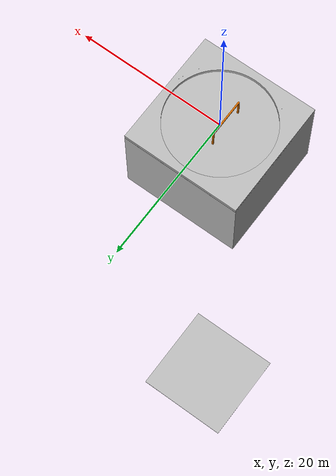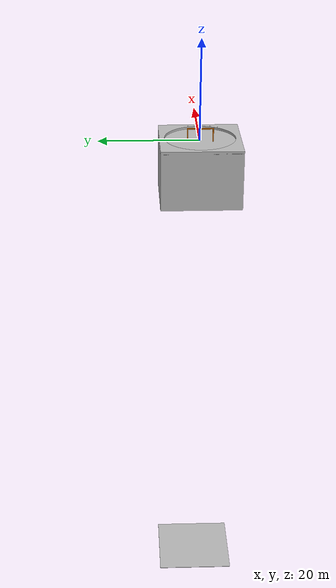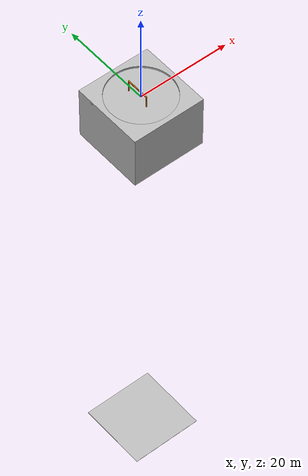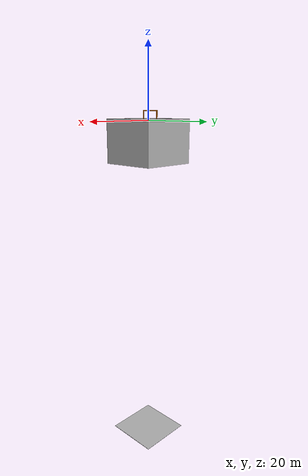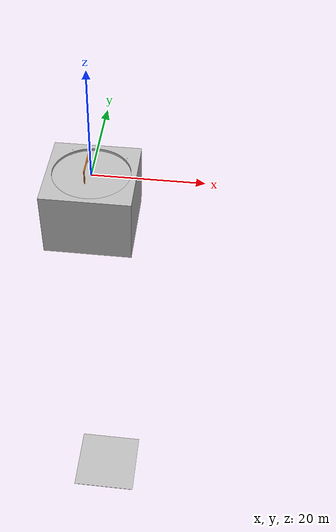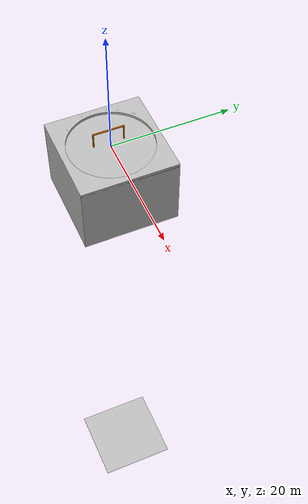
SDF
<sdf version="1.6">
 <world name="empty_underwater">
  <physics name="default_physics" default="1" type="ode">
   <max_step_size>0.002</max_step_size>
   <real_time_factor>1</real_time_factor>
   <real_time_update_rate>500</real_time_update_rate>
   <ode>
    <solver>
     <type>quick</type>
     <iters>50</iters>
     <sor>0.5</sor>
     <use_dynamic_moi_rescaling>0</use_dynamic_moi_rescaling>
    </solver>
    <constraints>
     <cfm>0</cfm>
     <erp>0.2</erp>
     <contact_max_correcting_vel>100</contact_max_correcting_vel>
     <contact_surface_layer>0.001</contact_surface_layer>
    </constraints>
   </ode>
  </physics>
  <scene>
   <ambient>0.01 0.01 0.01 1</ambient>
   <sky><clouds><speed>12</speed></clouds></sky>
   <shadows>1</shadows>
   <fog>
    <color>0.1 0.2 0.3 1</color>
    <type>linear</type>
    <density>0.001</density>
    <start>10</start>
    <end>200</end>
   </fog>
   <background>0.7 0.7 0.7 1</background>
  </scene>
  <spherical_coordinates>
   <latitude_deg>56.719</latitude_deg>
   <longitude_deg>3.51562</longitude_deg>
   <surface_model>EARTH_WGS84</surface_model>
   <elevation>0</elevation>
   <heading_deg>0</heading_deg>
  </spherical_coordinates>
  <model name="ocean_box">
   <static>1</static>
   <link name="link">
    <visual name="ground">
     <cast_shadows>0</cast_shadows>
     <pose>0 0 -100 0 -0 0</pose>
     <geometry><box><size>16 16 0.1</size></box></geometry>
     <material>
      <script>
       <uri>file://Media/materials/scripts/sand.material</uri>
       <name>UUVSimulator/SandAndStones</name>
      </script>
     </material>
    </visual>
    <collision name="ground">
     <pose>0 0 -100 0 -0 0</pose>
     <geometry><box><size>16 16 0.1</size></box></geometry>
    </collision>
    <visual name="surface">
     <cast_shadows>0</cast_shadows>
     <geometry><box><size>16 16 0.1</size></box></geometry>
     <material>
      <script>
       <uri>file://Media/materials/scripts/water.material</uri>
       <name>UUVSimulator/StaticDeepWater</name>
      </script>
     </material>
    </visual>
   </link>
  </model>
  <plugin name="underwater_current_plugin" filename="libuuv_underwater_current_ros_plugin.so">
   <namespace>hydrodynamics</namespace>
   <constant_current>
    <topic>current_velocity</topic>
    <velocity><mean>0</mean><min>0</min><max>5</max><mu>0.0</mu><noiseAmp>0.0</noiseAmp></velocity>
    <horizontal_angle>
     <mean>0</mean>
     <min>-3.141592653589793238</min>
     <max>3.141592653589793238</max>
     <mu>0.0</mu>
     <noiseAmp>0.0</noiseAmp>
    </horizontal_angle>
    <vertical_angle>
     <mean>0</mean>
     <min>-3.141592653589793238</min>
     <max>3.141592653589793238</max>
     <mu>0.0</mu>
     <noiseAmp>0.0</noiseAmp>
    </vertical_angle>
   </constant_current>
  </plugin>
  <plugin name="sc_interface" filename="libuuv_sc_ros_interface_plugin.so"/>
  <gravity>0 0 -9.8</gravity>
  <magnetic_field>6e-06 2.3e-05 -4.2e-05</magnetic_field>
  <atmosphere type="adiabatic"/>
  <model name="empty_pool">
   <pose>0 0 -5.5 -3.14159 0 0</pose>
   <static>1</static>
   <link name="link">
    <inertial>
     <mass>1</mass>
     <inertia><ixx>0.083</ixx><ixy>0</ixy><ixz>0</ixz><iyy>0.083</iyy><iyz>0</iyz><izz>0.083</izz></inertia>
    </inertial>
    <collision name="collision">
     <geometry><mesh><uri>model://empty_pool/meshes/pool.dae</uri><scale>1 1 1</scale></mesh></geometry>
    </collision>
    <visual name="visual">
     <geometry><mesh><uri>model://empty_pool/meshes/pool.dae</uri><scale>1 1 1</scale></mesh></geometry>
    </visual>
   </link>
  </model>
  <light name="user_point_light_0" type="point">
   <pose>-6.62677 6.47126 1 0 -0 0</pose>
   <diffuse>0.5 0.5 0.5 1</diffuse>
   <specular>0.1 0.1 0.1 1</specular>
   <attenuation>
    <range>20</range>
    <constant>0.5</constant>
    <linear>0.01</linear>
    <quadratic>0.001</quadratic>
   </attenuation>
   <cast_shadows>0</cast_shadows>
   <direction>0 0 -1</direction>
  </light>
  <light name="user_point_light_1" type="point">
   <pose>6.55899 6.43258 1 0 -0 0</pose>
   <diffuse>0.5 0.5 0.5 1</diffuse>
   <specular>0.1 0.1 0.1 1</specular>
   <attenuation>
    <range>20</range>
    <constant>0.5</constant>
    <linear>0.01</linear>
    <quadratic>0.001</quadratic>
   </attenuation>
   <cast_shadows>0</cast_shadows>
   <direction>0 0 -1</direction>
  </light>
  <light name="user_point_light_2" type="point">
   <pose>6.2811 -6.43682 1 0 -0 0</pose>
   <diffuse>0.5 0.5 0.5 1</diffuse>
   <specular>0.1 0.1 0.1 1</specular>
   <attenuation>
    <range>20</range>
    <constant>0.5</constant>
    <linear>0.01</linear>
    <quadratic>0.001</quadratic>
   </attenuation>
   <cast_shadows>0</cast_shadows>
   <direction>0 0 -1</direction>
  </light>
  <light name="user_point_light_3" type="point">
   <pose>-6.22365 -5.2901 1 0 -0 0</pose>
   <diffuse>0.5 0.5 0.5 1</diffuse>
   <specular>0.1 0.1 0.1 1</specular>
   <attenuation>
    <range>20</range>
    <constant>0.5</constant>
    <linear>0.01</linear>
    <quadratic>0.001</quadratic>
   </attenuation>
   <cast_shadows>0</cast_shadows>
   <direction>0 0 -1</direction>
  </light>
  <model name="gate_0">
   <pose>-0.8 0 -1.5 0 -0 0</pose>
   <static>1</static>
   <link name="link">
    <inertial>
     <mass>1</mass>
     <inertia><ixx>0.083</ixx><ixy>0</ixy><ixz>0</ixz><iyy>0.083</iyy><iyz>0</iyz><izz>0.083</izz></inertia>
    </inertial>
    <collision name="collision">
     <geometry><mesh><uri>model://gate/meshes/gate.dae</uri><scale>1 1 1</scale></mesh></geometry>
    </collision>
    <visual name="visual">
     <material>
      <ambient>0.8 0.4 0 1</ambient>
      <diffuse>0.8 0.4 0 1</diffuse>
      <specular>0.4 0.4 0.4 0.2</specular>
      <emissive>0 0 0 1</emissive>
     </material>
     <geometry><mesh><uri>model://gate/meshes/gate.dae</uri><scale>1 1 1</scale></mesh></geometry>
    </visual>
   </link>
  </model>
  <model name="pipe_0">
   <pose>3.6 0 -2 0 -0 0</pose>
   <static>1</static>
   <link name="link">
    <inertial>
     <mass>1</mass>
     <inertia><ixx>0.083</ixx><ixy>0</ixy><ixz>0</ixz><iyy>0.083</iyy><iyz>0</iyz><izz>0.083</izz></inertia>
    </inertial>
    <collision name="collision">
     <geometry><mesh><uri>model://pipe/meshes/pipe.dae</uri><scale>1 1 1</scale></mesh></geometry>
    </collision>
    <visual name="visual">
     <material>
      <ambient>0.8 0.4 0 1</ambient>
      <diffuse>0.8 0.4 0 1</diffuse>
      <specular>0.4 0.4 0.4 0.2</specular>
      <emissive>0 0 0 1</emissive>
     </material>
     <geometry><mesh><uri>model://pipe/meshes/pipe.dae</uri><scale>1 1 1</scale></mesh></geometry>
    </visual>
   </link>
  </model>
  <light name="user_directional_light_0" type="directional">
   <pose>2.17536 -2.41476 1 0 -0 0</pose>
   <diffuse>0.5 0.5 0.5 1</diffuse>
   <specular>0.1 0.1 0.1 1</specular>
   <direction>0.1 0.1 -0.9</direction>
   <attenuation>
    <range>20</range>
    <constant>0.5</constant>
    <linear>0.01</linear>
    <quadratic>0.001</quadratic>
   </attenuation>
  </light>
 </world>
</sdf>
